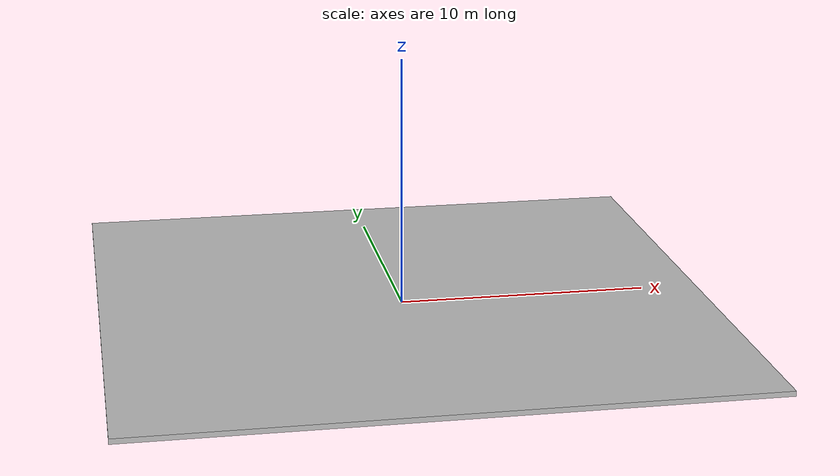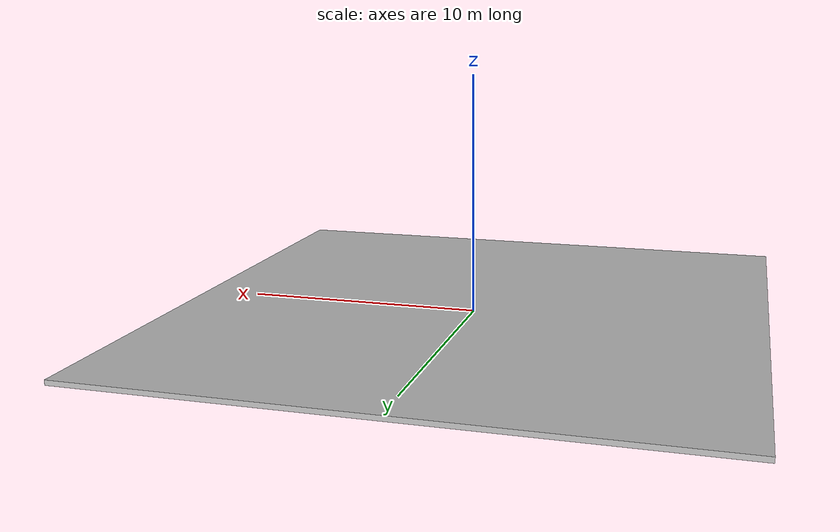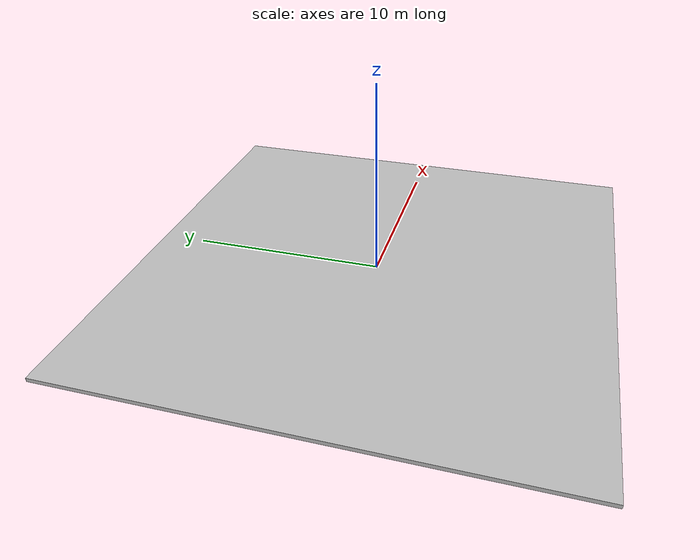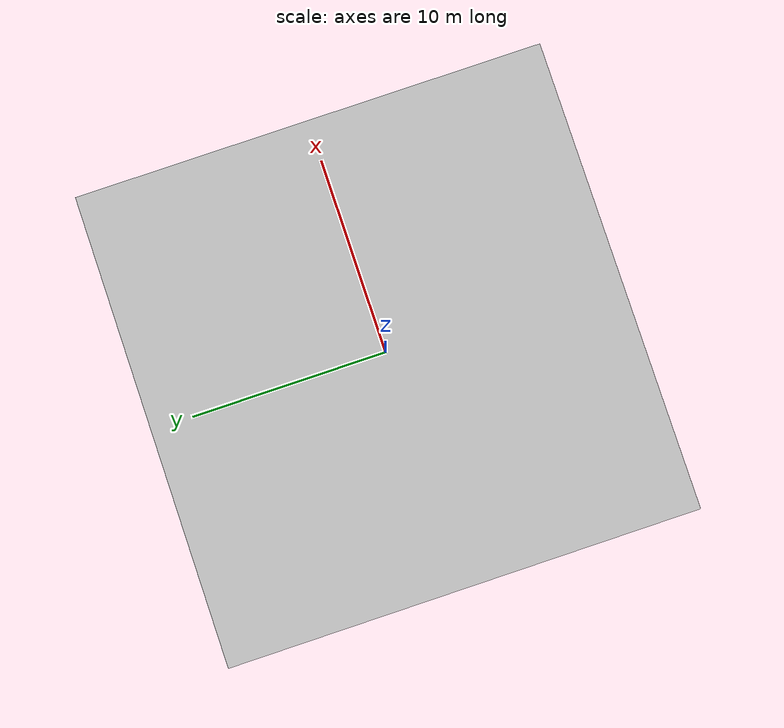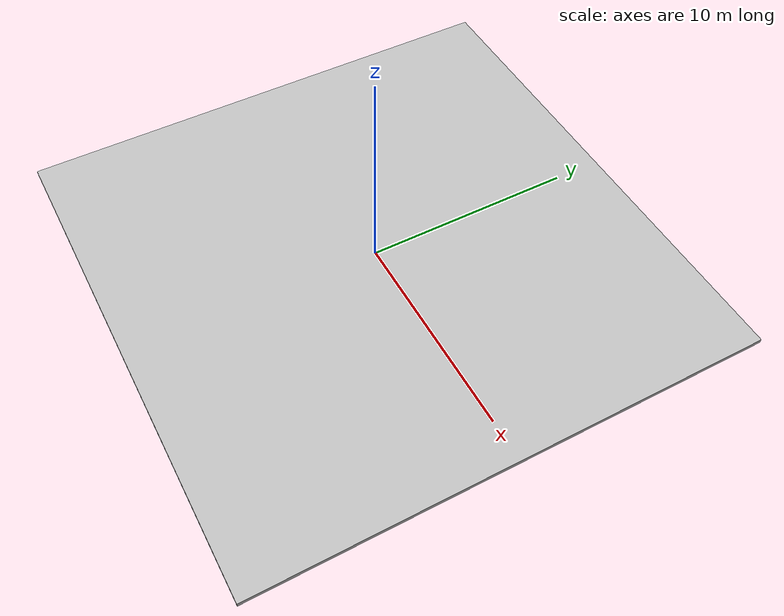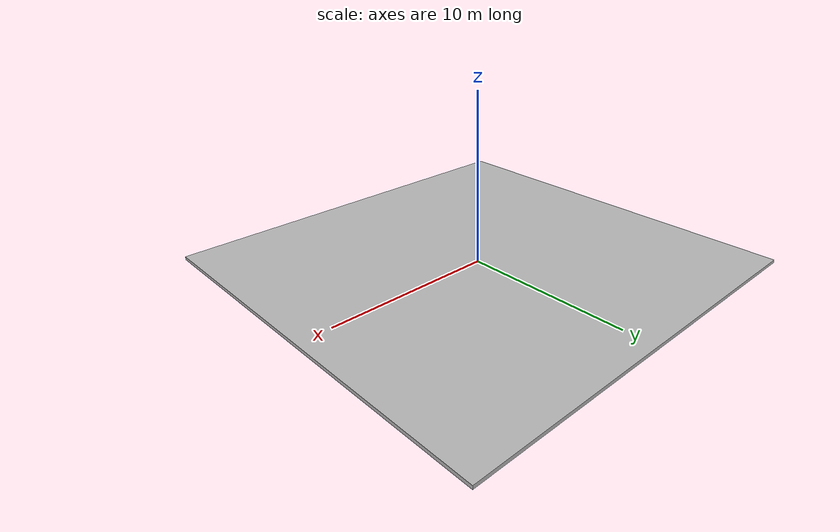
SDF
<?xml version="1.0" ?>

<sdf version="1.5">
<model name='concrete_2420_2420_20'>
      <static>1</static>
      <link name="link">
        <pose>0 0 0.1 0 0 0</pose>

        <visual name="visual">
          <geometry>
            <box>
              <size>24.2 24.2 0.2</size>
            </box>
          </geometry>
          <material>
            <script>
              <uri>model:///home/stibipet/mrs_workspace/src/radiation_nodes/gazebo_rad_obstacle/gazebo_models/materials/scripts</uri>
              <uri>model:///home/stibipet/mrs_workspace/src/radiation_nodes/gazebo_rad_obstacle/gazebo_models/materials/textures/</uri>
              <name>concrete/Image</name>
            </script>
          </material>
        </visual>

      </link>

      <plugin name='concrete' filename='libgazebo_rad_obstacle.so'>
        <depth>24.2</depth>
        <width>24.2</width>
        <height>0.2</height>
        <material>concrete</material>
        <density>2.3</density> <!-- g/cm^3 -->
        <mac60kev>0.266</mac60kev> <!-- cm^2/g -->
        <mac600kev>0.06236</mac600kev> <!-- cm^2/g -->
      </plugin>

    </model>
  </sdf>
